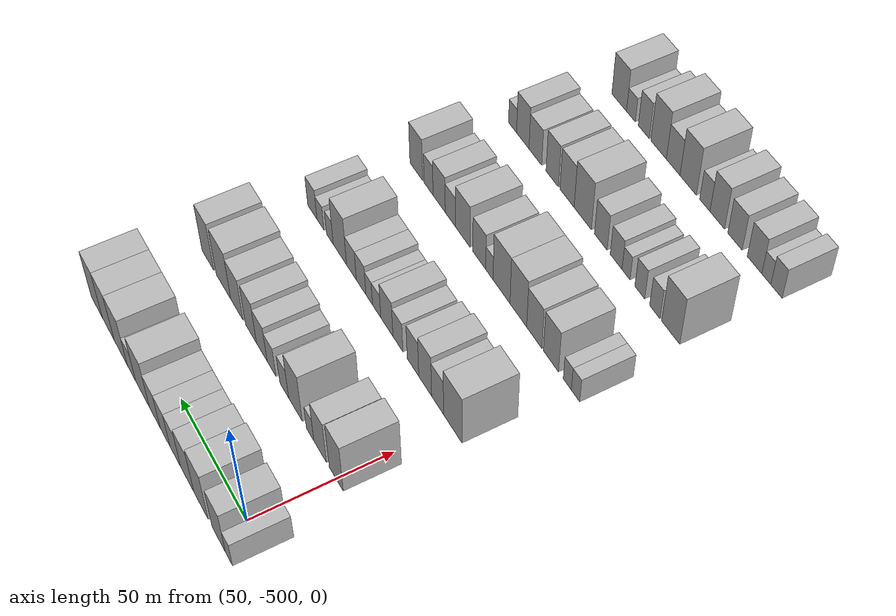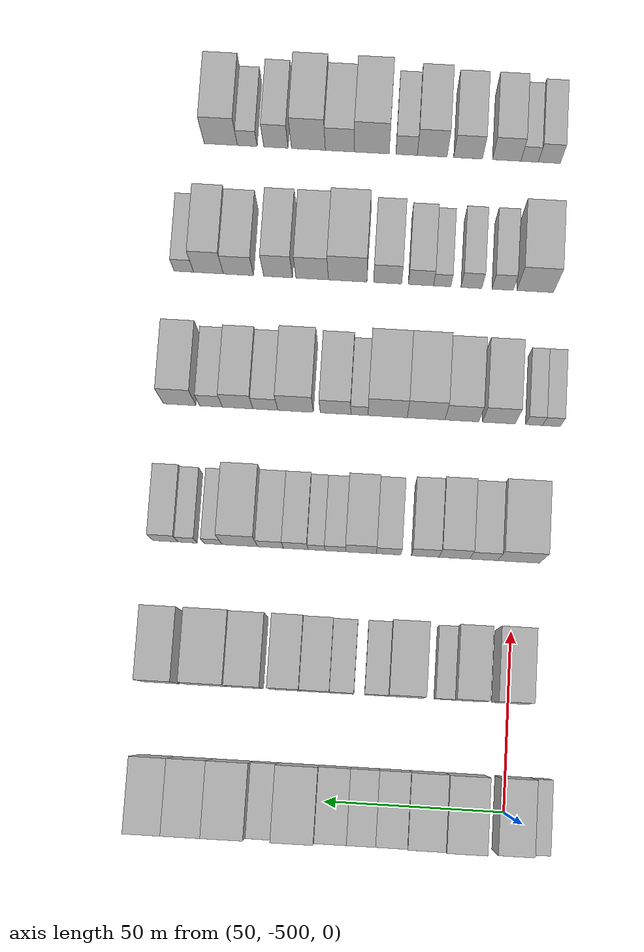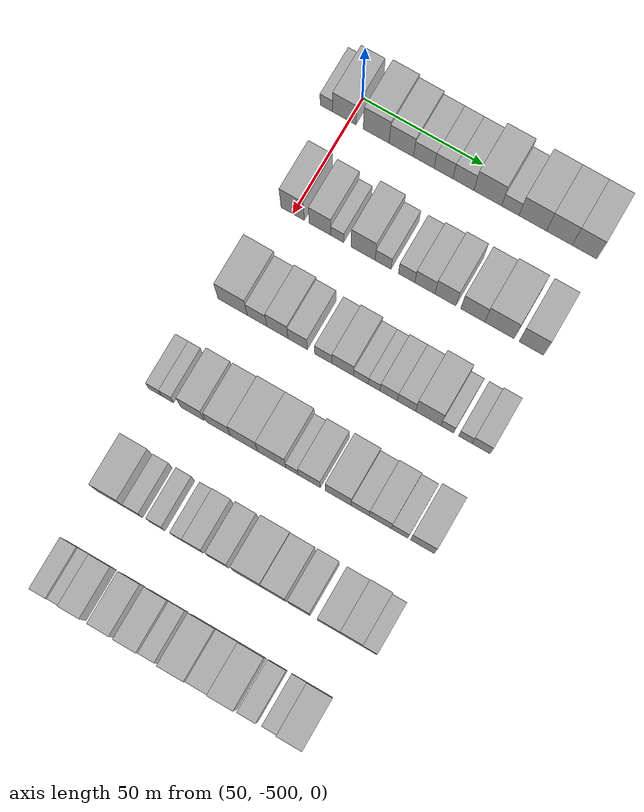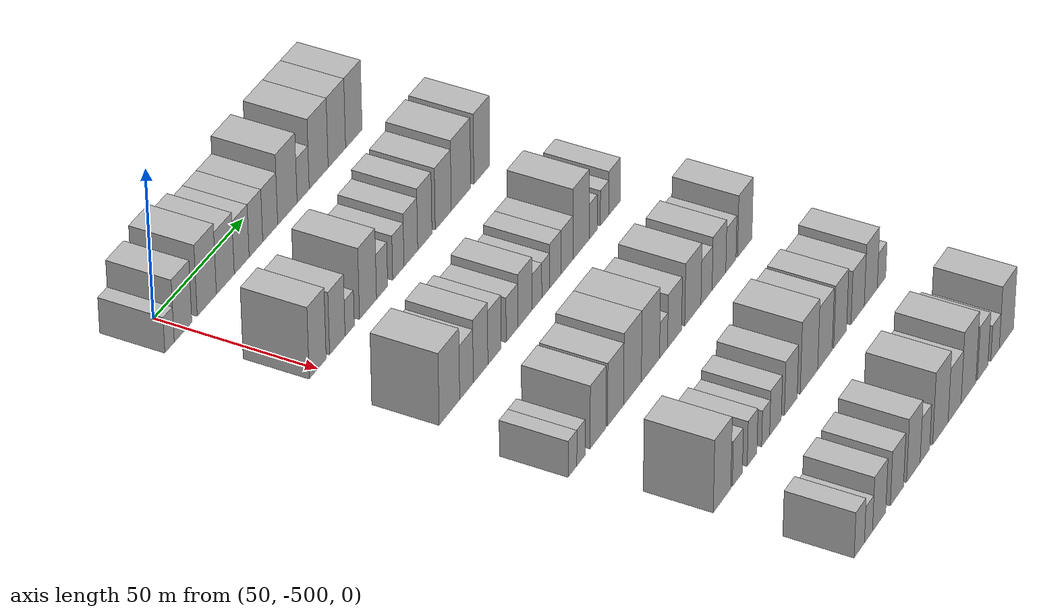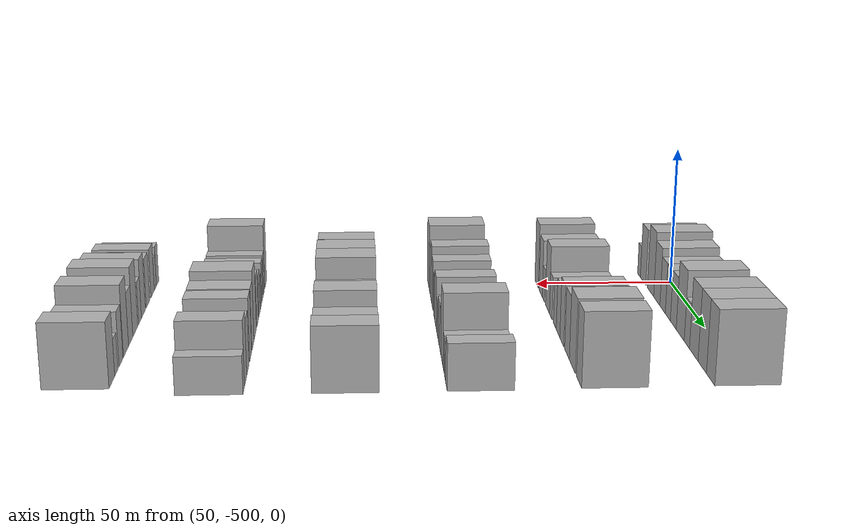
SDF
<sdf version="1.6">
 <world name="default">
  <model name="building_12">
   <static>1</static>
   <pose>50.0000 -509.3735 0 0.000000 0.000000 0.000000</pose>
   <link name="link">
    <pose>0 0 6.00 0 0 0</pose>
    <collision name="collision"><geometry><box><size>20.0000 5.1601 12.0000</size></box></geometry></collision>
    <visual name="visual">
     <cast_shadows>0</cast_shadows>
     <geometry><box><size>20.0000 5.1601 12.0000</size></box></geometry>
     <material>
      <script>
       <uri>model://HANNAS_wall/materials/scripts</uri>
       <uri>model://HANNAS_wall/materials/textures</uri>
       <name>vrc/HANNAS_wall</name>
      </script>
     </material>
    </visual>
   </link>
  </model>
  <model name="building_13">
   <static>1</static>
   <pose>50.0000 -501.9229 0 0.000000 0.000000 0.000000</pose>
   <link name="link">
    <pose>0 0 10.50 0 0 0</pose>
    <collision name="collision"><geometry><box><size>20.0000 9.7411 21.0000</size></box></geometry></collision>
    <visual name="visual">
     <cast_shadows>0</cast_shadows>
     <geometry><box><size>20.0000 9.7411 21.0000</size></box></geometry>
     <material>
      <script>
       <uri>model://HANNAS_wall/materials/scripts</uri>
       <uri>model://HANNAS_wall/materials/textures</uri>
       <name>vrc/HANNAS_wall</name>
      </script>
     </material>
    </visual>
   </link>
  </model>
  <model name="building_14">
   <static>1</static>
   <pose>50.0000 -488.6855 0 0.000000 0.000000 0.000000</pose>
   <link name="link">
    <pose>0 0 12.00 0 0 0</pose>
    <collision name="collision"><geometry><box><size>20.0000 10.7336 24.0000</size></box></geometry></collision>
    <visual name="visual">
     <cast_shadows>0</cast_shadows>
     <geometry><box><size>20.0000 10.7336 24.0000</size></box></geometry>
     <material>
      <script>
       <uri>model://HANNAS_wall/materials/scripts</uri>
       <uri>model://HANNAS_wall/materials/textures</uri>
       <name>vrc/HANNAS_wall</name>
      </script>
     </material>
    </visual>
   </link>
  </model>
  <model name="building_15">
   <static>1</static>
   <pose>50.0000 -478.2708 0 0.000000 0.000000 0.000000</pose>
   <link name="link">
    <pose>0 0 10.50 0 0 0</pose>
    <collision name="collision"><geometry><box><size>20.0000 10.0958 21.0000</size></box></geometry></collision>
    <visual name="visual">
     <cast_shadows>0</cast_shadows>
     <geometry><box><size>20.0000 10.0958 21.0000</size></box></geometry>
     <material>
      <script>
       <uri>model://HANNAS_wall/materials/scripts</uri>
       <uri>model://HANNAS_wall/materials/textures</uri>
       <name>vrc/HANNAS_wall</name>
      </script>
     </material>
    </visual>
   </link>
  </model>
  <model name="building_16">
   <static>1</static>
   <pose>50.0000 -468.9750 0 0.000000 0.000000 0.000000</pose>
   <link name="link">
    <pose>0 0 9.00 0 0 0</pose>
    <collision name="collision"><geometry><box><size>20.0000 8.4958 18.0000</size></box></geometry></collision>
    <visual name="visual">
     <cast_shadows>0</cast_shadows>
     <geometry><box><size>20.0000 8.4958 18.0000</size></box></geometry>
     <material>
      <script>
       <uri>model://HANNAS_wall/materials/scripts</uri>
       <uri>model://HANNAS_wall/materials/textures</uri>
       <name>vrc/HANNAS_wall</name>
      </script>
     </material>
    </visual>
   </link>
  </model>
  <model name="building_17">
   <static>1</static>
   <pose>50.0000 -460.8340 0 0.000000 0.000000 0.000000</pose>
   <link name="link">
    <pose>0 0 9.00 0 0 0</pose>
    <collision name="collision"><geometry><box><size>20.0000 7.7862 18.0000</size></box></geometry></collision>
    <visual name="visual">
     <cast_shadows>0</cast_shadows>
     <geometry><box><size>20.0000 7.7862 18.0000</size></box></geometry>
     <material>
      <script>
       <uri>model://HANNAS_wall/materials/scripts</uri>
       <uri>model://HANNAS_wall/materials/textures</uri>
       <name>vrc/HANNAS_wall</name>
      </script>
     </material>
    </visual>
   </link>
  </model>
  <model name="building_18">
   <static>1</static>
   <pose>50.0000 -452.6051 0 0.000000 0.000000 0.000000</pose>
   <link name="link">
    <pose>0 0 9.00 0 0 0</pose>
    <collision name="collision"><geometry><box><size>20.0000 8.6716 18.0000</size></box></geometry></collision>
    <visual name="visual">
     <cast_shadows>0</cast_shadows>
     <geometry><box><size>20.0000 8.6716 18.0000</size></box></geometry>
     <material>
      <script>
       <uri>model://HANNAS_wall/materials/scripts</uri>
       <uri>model://HANNAS_wall/materials/textures</uri>
       <name>vrc/HANNAS_wall</name>
      </script>
     </material>
    </visual>
   </link>
  </model>
  <model name="building_19">
   <static>1</static>
   <pose>50.0000 -442.5982 0 0.000000 0.000000 0.000000</pose>
   <link name="link">
    <pose>0 0 12.00 0 0 0</pose>
    <collision name="collision"><geometry><box><size>20.0000 11.3421 24.0000</size></box></geometry></collision>
    <visual name="visual">
     <cast_shadows>0</cast_shadows>
     <geometry><box><size>20.0000 11.3421 24.0000</size></box></geometry>
     <material>
      <script>
       <uri>model://HANNAS_wall/materials/scripts</uri>
       <uri>model://HANNAS_wall/materials/textures</uri>
       <name>vrc/HANNAS_wall</name>
      </script>
     </material>
    </visual>
   </link>
  </model>
  <model name="building_20">
   <static>1</static>
   <pose>50.0000 -433.3736 0 0.000000 0.000000 0.000000</pose>
   <link name="link">
    <pose>0 0 7.50 0 0 0</pose>
    <collision name="collision"><geometry><box><size>20.0000 7.1072 15.0000</size></box></geometry></collision>
    <visual name="visual">
     <cast_shadows>0</cast_shadows>
     <geometry><box><size>20.0000 7.1072 15.0000</size></box></geometry>
     <material>
      <script>
       <uri>model://HANNAS_wall/materials/scripts</uri>
       <uri>model://HANNAS_wall/materials/textures</uri>
       <name>vrc/HANNAS_wall</name>
      </script>
     </material>
    </visual>
   </link>
  </model>
  <model name="building_21">
   <static>1</static>
   <pose>50.0000 -424.1923 0 0.000000 0.000000 0.000000</pose>
   <link name="link">
    <pose>0 0 12.00 0 0 0</pose>
    <collision name="collision"><geometry><box><size>20.0000 11.2555 24.0000</size></box></geometry></collision>
    <visual name="visual">
     <cast_shadows>0</cast_shadows>
     <geometry><box><size>20.0000 11.2555 24.0000</size></box></geometry>
     <material>
      <script>
       <uri>model://HANNAS_wall/materials/scripts</uri>
       <uri>model://HANNAS_wall/materials/textures</uri>
       <name>vrc/HANNAS_wall</name>
      </script>
     </material>
    </visual>
   </link>
  </model>
  <model name="building_22">
   <static>1</static>
   <pose>50.0000 -413.3363 0 0.000000 0.000000 0.000000</pose>
   <link name="link">
    <pose>0 0 12.00 0 0 0</pose>
    <collision name="collision"><geometry><box><size>20.0000 10.4565 24.0000</size></box></geometry></collision>
    <visual name="visual">
     <cast_shadows>0</cast_shadows>
     <geometry><box><size>20.0000 10.4565 24.0000</size></box></geometry>
     <material>
      <script>
       <uri>model://HANNAS_wall/materials/scripts</uri>
       <uri>model://HANNAS_wall/materials/textures</uri>
       <name>vrc/HANNAS_wall</name>
      </script>
     </material>
    </visual>
   </link>
  </model>
  <model name="building_23">
   <static>1</static>
   <pose>50.0000 -403.1218 0 0.000000 0.000000 0.000000</pose>
   <link name="link">
    <pose>0 0 12.00 0 0 0</pose>
    <collision name="collision"><geometry><box><size>20.0000 9.9726 24.0000</size></box></geometry></collision>
    <visual name="visual">
     <cast_shadows>0</cast_shadows>
     <geometry><box><size>20.0000 9.9726 24.0000</size></box></geometry>
     <material>
      <script>
       <uri>model://HANNAS_wall/materials/scripts</uri>
       <uri>model://HANNAS_wall/materials/textures</uri>
       <name>vrc/HANNAS_wall</name>
      </script>
     </material>
    </visual>
   </link>
  </model>
  <model name="building_150">
   <static>1</static>
   <pose>90.0000 -500.0628 0 0.000000 0.000000 0.000000</pose>
   <link name="link">
    <pose>0 0 12.00 0 0 0</pose>
    <collision name="collision"><geometry><box><size>20.0000 9.6145 24.0000</size></box></geometry></collision>
    <visual name="visual">
     <cast_shadows>0</cast_shadows>
     <geometry><box><size>20.0000 9.6145 24.0000</size></box></geometry>
     <material>
      <script>
       <uri>model://HANNAS_wall/materials/scripts</uri>
       <uri>model://HANNAS_wall/materials/textures</uri>
       <name>vrc/HANNAS_wall</name>
      </script>
     </material>
    </visual>
   </link>
  </model>
  <model name="building_151">
   <static>1</static>
   <pose>90.0000 -488.8158 0 0.000000 0.000000 0.000000</pose>
   <link name="link">
    <pose>0 0 10.50 0 0 0</pose>
    <collision name="collision"><geometry><box><size>20.0000 8.8794 21.0000</size></box></geometry></collision>
    <visual name="visual">
     <cast_shadows>0</cast_shadows>
     <geometry><box><size>20.0000 8.8794 21.0000</size></box></geometry>
     <material>
      <script>
       <uri>model://HANNAS_wall/materials/scripts</uri>
       <uri>model://HANNAS_wall/materials/textures</uri>
       <name>vrc/HANNAS_wall</name>
      </script>
     </material>
    </visual>
   </link>
  </model>
  <model name="building_152">
   <static>1</static>
   <pose>90.0000 -481.7092 0 0.000000 0.000000 0.000000</pose>
   <link name="link">
    <pose>0 0 6.00 0 0 0</pose>
    <collision name="collision"><geometry><box><size>20.0000 5.3338 12.0000</size></box></geometry></collision>
    <visual name="visual">
     <cast_shadows>0</cast_shadows>
     <geometry><box><size>20.0000 5.3338 12.0000</size></box></geometry>
     <material>
      <script>
       <uri>model://HANNAS_wall/materials/scripts</uri>
       <uri>model://HANNAS_wall/materials/textures</uri>
       <name>vrc/HANNAS_wall</name>
      </script>
     </material>
    </visual>
   </link>
  </model>
  <model name="building_153">
   <static>1</static>
   <pose>90.0000 -471.0716 0 0.000000 0.000000 0.000000</pose>
   <link name="link">
    <pose>0 0 12.00 0 0 0</pose>
    <collision name="collision"><geometry><box><size>20.0000 9.9414 24.0000</size></box></geometry></collision>
    <visual name="visual">
     <cast_shadows>0</cast_shadows>
     <geometry><box><size>20.0000 9.9414 24.0000</size></box></geometry>
     <material>
      <script>
       <uri>model://HANNAS_wall/materials/scripts</uri>
       <uri>model://HANNAS_wall/materials/textures</uri>
       <name>vrc/HANNAS_wall</name>
      </script>
     </material>
    </visual>
   </link>
  </model>
  <model name="building_154">
   <static>1</static>
   <pose>90.0000 -462.8353 0 0.000000 0.000000 0.000000</pose>
   <link name="link">
    <pose>0 0 7.50 0 0 0</pose>
    <collision name="collision"><geometry><box><size>20.0000 6.5312 15.0000</size></box></geometry></collision>
    <visual name="visual">
     <cast_shadows>0</cast_shadows>
     <geometry><box><size>20.0000 6.5312 15.0000</size></box></geometry>
     <material>
      <script>
       <uri>model://HANNAS_wall/materials/scripts</uri>
       <uri>model://HANNAS_wall/materials/textures</uri>
       <name>vrc/HANNAS_wall</name>
      </script>
     </material>
    </visual>
   </link>
  </model>
  <model name="building_155">
   <static>1</static>
   <pose>90.0000 -453.2290 0 0.000000 0.000000 0.000000</pose>
   <link name="link">
    <pose>0 0 7.50 0 0 0</pose>
    <collision name="collision"><geometry><box><size>20.0000 6.6815 15.0000</size></box></geometry></collision>
    <visual name="visual">
     <cast_shadows>0</cast_shadows>
     <geometry><box><size>20.0000 6.6815 15.0000</size></box></geometry>
     <material>
      <script>
       <uri>model://HANNAS_wall/materials/scripts</uri>
       <uri>model://HANNAS_wall/materials/textures</uri>
       <name>vrc/HANNAS_wall</name>
      </script>
     </material>
    </visual>
   </link>
  </model>
  <model name="building_156">
   <static>1</static>
   <pose>90.0000 -445.7831 0 0.000000 0.000000 0.000000</pose>
   <link name="link">
    <pose>0 0 9.00 0 0 0</pose>
    <collision name="collision"><geometry><box><size>20.0000 8.2102 18.0000</size></box></geometry></collision>
    <visual name="visual">
     <cast_shadows>0</cast_shadows>
     <geometry><box><size>20.0000 8.2102 18.0000</size></box></geometry>
     <material>
      <script>
       <uri>model://HANNAS_wall/materials/scripts</uri>
       <uri>model://HANNAS_wall/materials/textures</uri>
       <name>vrc/HANNAS_wall</name>
      </script>
     </material>
    </visual>
   </link>
  </model>
  <model name="building_157">
   <static>1</static>
   <pose>90.0000 -437.3935 0 0.000000 0.000000 0.000000</pose>
   <link name="link">
    <pose>0 0 10.50 0 0 0</pose>
    <collision name="collision"><geometry><box><size>20.0000 8.5689 21.0000</size></box></geometry></collision>
    <visual name="visual">
     <cast_shadows>0</cast_shadows>
     <geometry><box><size>20.0000 8.5689 21.0000</size></box></geometry>
     <material>
      <script>
       <uri>model://HANNAS_wall/materials/scripts</uri>
       <uri>model://HANNAS_wall/materials/textures</uri>
       <name>vrc/HANNAS_wall</name>
      </script>
     </material>
    </visual>
   </link>
  </model>
  <model name="building_158">
   <static>1</static>
   <pose>90.0000 -426.2437 0 0.000000 0.000000 0.000000</pose>
   <link name="link">
    <pose>0 0 10.50 0 0 0</pose>
    <collision name="collision"><geometry><box><size>20.0000 9.7307 21.0000</size></box></geometry></collision>
    <visual name="visual">
     <cast_shadows>0</cast_shadows>
     <geometry><box><size>20.0000 9.7307 21.0000</size></box></geometry>
     <material>
      <script>
       <uri>model://HANNAS_wall/materials/scripts</uri>
       <uri>model://HANNAS_wall/materials/textures</uri>
       <name>vrc/HANNAS_wall</name>
      </script>
     </material>
    </visual>
   </link>
  </model>
  <model name="building_159">
   <static>1</static>
   <pose>90.0000 -415.4291 0 0.000000 0.000000 0.000000</pose>
   <link name="link">
    <pose>0 0 12.00 0 0 0</pose>
    <collision name="collision"><geometry><box><size>20.0000 11.8985 24.0000</size></box></geometry></collision>
    <visual name="visual">
     <cast_shadows>0</cast_shadows>
     <geometry><box><size>20.0000 11.8985 24.0000</size></box></geometry>
     <material>
      <script>
       <uri>model://HANNAS_wall/materials/scripts</uri>
       <uri>model://HANNAS_wall/materials/textures</uri>
       <name>vrc/HANNAS_wall</name>
      </script>
     </material>
    </visual>
   </link>
  </model>
  <model name="building_160">
   <static>1</static>
   <pose>90.0000 -402.5611 0 0.000000 0.000000 0.000000</pose>
   <link name="link">
    <pose>0 0 12.00 0 0 0</pose>
    <collision name="collision"><geometry><box><size>20.0000 9.8374 24.0000</size></box></geometry></collision>
    <visual name="visual">
     <cast_shadows>0</cast_shadows>
     <geometry><box><size>20.0000 9.8374 24.0000</size></box></geometry>
     <material>
      <script>
       <uri>model://HANNAS_wall/materials/scripts</uri>
       <uri>model://HANNAS_wall/materials/textures</uri>
       <name>vrc/HANNAS_wall</name>
      </script>
     </material>
    </visual>
   </link>
  </model>
  <model name="building_287">
   <static>1</static>
   <pose>130.0000 -501.2311 0 0.000000 0.000000 0.000000</pose>
   <link name="link">
    <pose>0 0 12.00 0 0 0</pose>
    <collision name="collision"><geometry><box><size>20.0000 11.9650 24.0000</size></box></geometry></collision>
    <visual name="visual">
     <cast_shadows>0</cast_shadows>
     <geometry><box><size>20.0000 11.9650 24.0000</size></box></geometry>
     <material>
      <script>
       <uri>model://HANNAS_wall/materials/scripts</uri>
       <uri>model://HANNAS_wall/materials/textures</uri>
       <name>vrc/HANNAS_wall</name>
      </script>
     </material>
    </visual>
   </link>
  </model>
  <model name="building_288">
   <static>1</static>
   <pose>130.0000 -491.2290 0 0.000000 0.000000 0.000000</pose>
   <link name="link">
    <pose>0 0 9.00 0 0 0</pose>
    <collision name="collision"><geometry><box><size>20.0000 8.0391 18.0000</size></box></geometry></collision>
    <visual name="visual">
     <cast_shadows>0</cast_shadows>
     <geometry><box><size>20.0000 8.0391 18.0000</size></box></geometry>
     <material>
      <script>
       <uri>model://HANNAS_wall/materials/scripts</uri>
       <uri>model://HANNAS_wall/materials/textures</uri>
       <name>vrc/HANNAS_wall</name>
      </script>
     </material>
    </visual>
   </link>
  </model>
  <model name="building_289">
   <static>1</static>
   <pose>130.0000 -482.8814 0 0.000000 0.000000 0.000000</pose>
   <link name="link">
    <pose>0 0 10.50 0 0 0</pose>
    <collision name="collision"><geometry><box><size>20.0000 8.6561 21.0000</size></box></geometry></collision>
    <visual name="visual">
     <cast_shadows>0</cast_shadows>
     <geometry><box><size>20.0000 8.6561 21.0000</size></box></geometry>
     <material>
      <script>
       <uri>model://HANNAS_wall/materials/scripts</uri>
       <uri>model://HANNAS_wall/materials/textures</uri>
       <name>vrc/HANNAS_wall</name>
      </script>
     </material>
    </visual>
   </link>
  </model>
  <model name="building_290">
   <static>1</static>
   <pose>130.0000 -474.5898 0 0.000000 0.000000 0.000000</pose>
   <link name="link">
    <pose>0 0 9.00 0 0 0</pose>
    <collision name="collision"><geometry><box><size>20.0000 7.9272 18.0000</size></box></geometry></collision>
    <visual name="visual">
     <cast_shadows>0</cast_shadows>
     <geometry><box><size>20.0000 7.9272 18.0000</size></box></geometry>
     <material>
      <script>
       <uri>model://HANNAS_wall/materials/scripts</uri>
       <uri>model://HANNAS_wall/materials/textures</uri>
       <name>vrc/HANNAS_wall</name>
      </script>
     </material>
    </visual>
   </link>
  </model>
  <model name="building_291">
   <static>1</static>
   <pose>130.0000 -464.1176 0 0.000000 0.000000 0.000000</pose>
   <link name="link">
    <pose>0 0 7.50 0 0 0</pose>
    <collision name="collision"><geometry><box><size>20.0000 7.0173 15.0000</size></box></geometry></collision>
    <visual name="visual">
     <cast_shadows>0</cast_shadows>
     <geometry><box><size>20.0000 7.0173 15.0000</size></box></geometry>
     <material>
      <script>
       <uri>model://HANNAS_wall/materials/scripts</uri>
       <uri>model://HANNAS_wall/materials/textures</uri>
       <name>vrc/HANNAS_wall</name>
      </script>
     </material>
    </visual>
   </link>
  </model>
  <model name="building_292">
   <static>1</static>
   <pose>130.0000 -456.2841 0 0.000000 0.000000 0.000000</pose>
   <link name="link">
    <pose>0 0 9.00 0 0 0</pose>
    <collision name="collision"><geometry><box><size>20.0000 8.6497 18.0000</size></box></geometry></collision>
    <visual name="visual">
     <cast_shadows>0</cast_shadows>
     <geometry><box><size>20.0000 8.6497 18.0000</size></box></geometry>
     <material>
      <script>
       <uri>model://HANNAS_wall/materials/scripts</uri>
       <uri>model://HANNAS_wall/materials/textures</uri>
       <name>vrc/HANNAS_wall</name>
      </script>
     </material>
    </visual>
   </link>
  </model>
  <model name="building_293">
   <static>1</static>
   <pose>130.0000 -448.9677 0 0.000000 0.000000 0.000000</pose>
   <link name="link">
    <pose>0 0 6.00 0 0 0</pose>
    <collision name="collision"><geometry><box><size>20.0000 5.9830 12.0000</size></box></geometry></collision>
    <visual name="visual">
     <cast_shadows>0</cast_shadows>
     <geometry><box><size>20.0000 5.9830 12.0000</size></box></geometry>
     <material>
      <script>
       <uri>model://HANNAS_wall/materials/scripts</uri>
       <uri>model://HANNAS_wall/materials/textures</uri>
       <name>vrc/HANNAS_wall</name>
      </script>
     </material>
    </visual>
   </link>
  </model>
  <model name="building_294">
   <static>1</static>
   <pose>130.0000 -443.5596 0 0.000000 0.000000 0.000000</pose>
   <link name="link">
    <pose>0 0 6.00 0 0 0</pose>
    <collision name="collision"><geometry><box><size>20.0000 4.8331 12.0000</size></box></geometry></collision>
    <visual name="visual">
     <cast_shadows>0</cast_shadows>
     <geometry><box><size>20.0000 4.8331 12.0000</size></box></geometry>
     <material>
      <script>
       <uri>model://HANNAS_wall/materials/scripts</uri>
       <uri>model://HANNAS_wall/materials/textures</uri>
       <name>vrc/HANNAS_wall</name>
      </script>
     </material>
    </visual>
   </link>
  </model>
  <model name="building_295">
   <static>1</static>
   <pose>130.0000 -437.6165 0 0.000000 0.000000 0.000000</pose>
   <link name="link">
    <pose>0 0 7.50 0 0 0</pose>
    <collision name="collision"><geometry><box><size>20.0000 7.0532 15.0000</size></box></geometry></collision>
    <visual name="visual">
     <cast_shadows>0</cast_shadows>
     <geometry><box><size>20.0000 7.0532 15.0000</size></box></geometry>
     <material>
      <script>
       <uri>model://HANNAS_wall/materials/scripts</uri>
       <uri>model://HANNAS_wall/materials/textures</uri>
       <name>vrc/HANNAS_wall</name>
      </script>
     </material>
    </visual>
   </link>
  </model>
  <model name="building_296">
   <static>1</static>
   <pose>130.0000 -430.4290 0 0.000000 0.000000 0.000000</pose>
   <link name="link">
    <pose>0 0 7.50 0 0 0</pose>
    <collision name="collision"><geometry><box><size>20.0000 7.3217 15.0000</size></box></geometry></collision>
    <visual name="visual">
     <cast_shadows>0</cast_shadows>
     <geometry><box><size>20.0000 7.3217 15.0000</size></box></geometry>
     <material>
      <script>
       <uri>model://HANNAS_wall/materials/scripts</uri>
       <uri>model://HANNAS_wall/materials/textures</uri>
       <name>vrc/HANNAS_wall</name>
      </script>
     </material>
    </visual>
   </link>
  </model>
  <model name="building_297">
   <static>1</static>
   <pose>130.0000 -421.6729 0 0.000000 0.000000 0.000000</pose>
   <link name="link">
    <pose>0 0 12.00 0 0 0</pose>
    <collision name="collision"><geometry><box><size>20.0000 10.1904 24.0000</size></box></geometry></collision>
    <visual name="visual">
     <cast_shadows>0</cast_shadows>
     <geometry><box><size>20.0000 10.1904 24.0000</size></box></geometry>
     <material>
      <script>
       <uri>model://HANNAS_wall/materials/scripts</uri>
       <uri>model://HANNAS_wall/materials/textures</uri>
       <name>vrc/HANNAS_wall</name>
      </script>
     </material>
    </visual>
   </link>
  </model>
  <model name="building_298">
   <static>1</static>
   <pose>130.0000 -414.0072 0 0.000000 0.000000 0.000000</pose>
   <link name="link">
    <pose>0 0 6.00 0 0 0</pose>
    <collision name="collision"><geometry><box><size>20.0000 5.1411 12.0000</size></box></geometry></collision>
    <visual name="visual">
     <cast_shadows>0</cast_shadows>
     <geometry><box><size>20.0000 5.1411 12.0000</size></box></geometry>
     <material>
      <script>
       <uri>model://HANNAS_wall/materials/scripts</uri>
       <uri>model://HANNAS_wall/materials/textures</uri>
       <name>vrc/HANNAS_wall</name>
      </script>
     </material>
    </visual>
   </link>
  </model>
  <model name="building_299">
   <static>1</static>
   <pose>130.0000 -406.7465 0 0.000000 0.000000 0.000000</pose>
   <link name="link">
    <pose>0 0 6.00 0 0 0</pose>
    <collision name="collision"><geometry><box><size>20.0000 5.3802 12.0000</size></box></geometry></collision>
    <visual name="visual">
     <cast_shadows>0</cast_shadows>
     <geometry><box><size>20.0000 5.3802 12.0000</size></box></geometry>
     <material>
      <script>
       <uri>model://HANNAS_wall/materials/scripts</uri>
       <uri>model://HANNAS_wall/materials/textures</uri>
       <name>vrc/HANNAS_wall</name>
      </script>
     </material>
    </visual>
   </link>
  </model>
  <model name="building_300">
   <static>1</static>
   <pose>130.0000 -400.4100 0 0.000000 0.000000 0.000000</pose>
   <link name="link">
    <pose>0 0 7.50 0 0 0</pose>
    <collision name="collision"><geometry><box><size>20.0000 7.2929 15.0000</size></box></geometry></collision>
    <visual name="visual">
     <cast_shadows>0</cast_shadows>
     <geometry><box><size>20.0000 7.2929 15.0000</size></box></geometry>
     <material>
      <script>
       <uri>model://HANNAS_wall/materials/scripts</uri>
       <uri>model://HANNAS_wall/materials/textures</uri>
       <name>vrc/HANNAS_wall</name>
      </script>
     </material>
    </visual>
   </link>
  </model>
  <model name="building_431">
   <static>1</static>
   <pose>170.0000 -509.1385 0 0.000000 0.000000 0.000000</pose>
   <link name="link">
    <pose>0 0 6.00 0 0 0</pose>
    <collision name="collision"><geometry><box><size>20.0000 5.1573 12.0000</size></box></geometry></collision>
    <visual name="visual">
     <cast_shadows>0</cast_shadows>
     <geometry><box><size>20.0000 5.1573 12.0000</size></box></geometry>
     <material>
      <script>
       <uri>model://HANNAS_wall/materials/scripts</uri>
       <uri>model://HANNAS_wall/materials/textures</uri>
       <name>vrc/HANNAS_wall</name>
      </script>
     </material>
    </visual>
   </link>
  </model>
  <model name="building_432">
   <static>1</static>
   <pose>170.0000 -504.0780 0 0.000000 0.000000 0.000000</pose>
   <link name="link">
    <pose>0 0 6.00 0 0 0</pose>
    <collision name="collision"><geometry><box><size>20.0000 4.9638 12.0000</size></box></geometry></collision>
    <visual name="visual">
     <cast_shadows>0</cast_shadows>
     <geometry><box><size>20.0000 4.9638 12.0000</size></box></geometry>
     <material>
      <script>
       <uri>model://HANNAS_wall/materials/scripts</uri>
       <uri>model://HANNAS_wall/materials/textures</uri>
       <name>vrc/HANNAS_wall</name>
      </script>
     </material>
    </visual>
   </link>
  </model>
  <model name="building_433">
   <static>1</static>
   <pose>170.0000 -493.8339 0 0.000000 0.000000 0.000000</pose>
   <link name="link">
    <pose>0 0 10.50 0 0 0</pose>
    <collision name="collision"><geometry><box><size>20.0000 9.5243 21.0000</size></box></geometry></collision>
    <visual name="visual">
     <cast_shadows>0</cast_shadows>
     <geometry><box><size>20.0000 9.5243 21.0000</size></box></geometry>
     <material>
      <script>
       <uri>model://HANNAS_wall/materials/scripts</uri>
       <uri>model://HANNAS_wall/materials/textures</uri>
       <name>vrc/HANNAS_wall</name>
      </script>
     </material>
    </visual>
   </link>
  </model>
  <model name="building_434">
   <static>1</static>
   <pose>170.0000 -483.1790 0 0.000000 0.000000 0.000000</pose>
   <link name="link">
    <pose>0 0 10.50 0 0 0</pose>
    <collision name="collision"><geometry><box><size>20.0000 9.7855 21.0000</size></box></geometry></collision>
    <visual name="visual">
     <cast_shadows>0</cast_shadows>
     <geometry><box><size>20.0000 9.7855 21.0000</size></box></geometry>
     <material>
      <script>
       <uri>model://HANNAS_wall/materials/scripts</uri>
       <uri>model://HANNAS_wall/materials/textures</uri>
       <name>vrc/HANNAS_wall</name>
      </script>
     </material>
    </visual>
   </link>
  </model>
  <model name="building_435">
   <static>1</static>
   <pose>170.0000 -472.7979 0 0.000000 0.000000 0.000000</pose>
   <link name="link">
    <pose>0 0 12.00 0 0 0</pose>
    <collision name="collision"><geometry><box><size>20.0000 10.9767 24.0000</size></box></geometry></collision>
    <visual name="visual">
     <cast_shadows>0</cast_shadows>
     <geometry><box><size>20.0000 10.9767 24.0000</size></box></geometry>
     <material>
      <script>
       <uri>model://HANNAS_wall/materials/scripts</uri>
       <uri>model://HANNAS_wall/materials/textures</uri>
       <name>vrc/HANNAS_wall</name>
      </script>
     </material>
    </visual>
   </link>
  </model>
  <model name="building_436">
   <static>1</static>
   <pose>170.0000 -461.6426 0 0.000000 0.000000 0.000000</pose>
   <link name="link">
    <pose>0 0 12.00 0 0 0</pose>
    <collision name="collision"><geometry><box><size>20.0000 11.3337 24.0000</size></box></geometry></collision>
    <visual name="visual">
     <cast_shadows>0</cast_shadows>
     <geometry><box><size>20.0000 11.3337 24.0000</size></box></geometry>
     <material>
      <script>
       <uri>model://HANNAS_wall/materials/scripts</uri>
       <uri>model://HANNAS_wall/materials/textures</uri>
       <name>vrc/HANNAS_wall</name>
      </script>
     </material>
    </visual>
   </link>
  </model>
  <model name="building_437">
   <static>1</static>
   <pose>170.0000 -453.4624 0 0.000000 0.000000 0.000000</pose>
   <link name="link">
    <pose>0 0 6.00 0 0 0</pose>
    <collision name="collision"><geometry><box><size>20.0000 5.0268 12.0000</size></box></geometry></collision>
    <visual name="visual">
     <cast_shadows>0</cast_shadows>
     <geometry><box><size>20.0000 5.0268 12.0000</size></box></geometry>
     <material>
      <script>
       <uri>model://HANNAS_wall/materials/scripts</uri>
       <uri>model://HANNAS_wall/materials/textures</uri>
       <name>vrc/HANNAS_wall</name>
      </script>
     </material>
    </visual>
   </link>
  </model>
  <model name="building_438">
   <static>1</static>
   <pose>170.0000 -446.5147 0 0.000000 0.000000 0.000000</pose>
   <link name="link">
    <pose>0 0 9.00 0 0 0</pose>
    <collision name="collision"><geometry><box><size>20.0000 8.8685 18.0000</size></box></geometry></collision>
    <visual name="visual">
     <cast_shadows>0</cast_shadows>
     <geometry><box><size>20.0000 8.8685 18.0000</size></box></geometry>
     <material>
      <script>
       <uri>model://HANNAS_wall/materials/scripts</uri>
       <uri>model://HANNAS_wall/materials/textures</uri>
       <name>vrc/HANNAS_wall</name>
      </script>
     </material>
    </visual>
   </link>
  </model>
  <model name="building_439">
   <static>1</static>
   <pose>170.0000 -434.9189 0 0.000000 0.000000 0.000000</pose>
   <link name="link">
    <pose>0 0 10.50 0 0 0</pose>
    <collision name="collision"><geometry><box><size>20.0000 10.3233 21.0000</size></box></geometry></collision>
    <visual name="visual">
     <cast_shadows>0</cast_shadows>
     <geometry><box><size>20.0000 10.3233 21.0000</size></box></geometry>
     <material>
      <script>
       <uri>model://HANNAS_wall/materials/scripts</uri>
       <uri>model://HANNAS_wall/materials/textures</uri>
       <name>vrc/HANNAS_wall</name>
      </script>
     </material>
    </visual>
   </link>
  </model>
  <model name="building_440">
   <static>1</static>
   <pose>170.0000 -426.1448 0 0.000000 0.000000 0.000000</pose>
   <link name="link">
    <pose>0 0 7.50 0 0 0</pose>
    <collision name="collision"><geometry><box><size>20.0000 7.2248 15.0000</size></box></geometry></collision>
    <visual name="visual">
     <cast_shadows>0</cast_shadows>
     <geometry><box><size>20.0000 7.2248 15.0000</size></box></geometry>
     <material>
      <script>
       <uri>model://HANNAS_wall/materials/scripts</uri>
       <uri>model://HANNAS_wall/materials/textures</uri>
       <name>vrc/HANNAS_wall</name>
      </script>
     </material>
    </visual>
   </link>
  </model>
  <model name="building_441">
   <static>1</static>
   <pose>170.0000 -418.1004 0 0.000000 0.000000 0.000000</pose>
   <link name="link">
    <pose>0 0 9.00 0 0 0</pose>
    <collision name="collision"><geometry><box><size>20.0000 8.8639 18.0000</size></box></geometry></collision>
    <visual name="visual">
     <cast_shadows>0</cast_shadows>
     <geometry><box><size>20.0000 8.8639 18.0000</size></box></geometry>
     <material>
      <script>
       <uri>model://HANNAS_wall/materials/scripts</uri>
       <uri>model://HANNAS_wall/materials/textures</uri>
       <name>vrc/HANNAS_wall</name>
      </script>
     </material>
    </visual>
   </link>
  </model>
  <model name="building_442">
   <static>1</static>
   <pose>170.0000 -410.3315 0 0.000000 0.000000 0.000000</pose>
   <link name="link">
    <pose>0 0 7.50 0 0 0</pose>
    <collision name="collision"><geometry><box><size>20.0000 6.6740 15.0000</size></box></geometry></collision>
    <visual name="visual">
     <cast_shadows>0</cast_shadows>
     <geometry><box><size>20.0000 6.6740 15.0000</size></box></geometry>
     <material>
      <script>
       <uri>model://HANNAS_wall/materials/scripts</uri>
       <uri>model://HANNAS_wall/materials/textures</uri>
       <name>vrc/HANNAS_wall</name>
      </script>
     </material>
    </visual>
   </link>
  </model>
  <model name="building_443">
   <static>1</static>
   <pose>170.0000 -401.2543 0 0.000000 0.000000 0.000000</pose>
   <link name="link">
    <pose>0 0 10.50 0 0 0</pose>
    <collision name="collision"><geometry><box><size>20.0000 9.4803 21.0000</size></box></geometry></collision>
    <visual name="visual">
     <cast_shadows>0</cast_shadows>
     <geometry><box><size>20.0000 9.4803 21.0000</size></box></geometry>
     <material>
      <script>
       <uri>model://HANNAS_wall/materials/scripts</uri>
       <uri>model://HANNAS_wall/materials/textures</uri>
       <name>vrc/HANNAS_wall</name>
      </script>
     </material>
    </visual>
   </link>
  </model>
  <model name="building_563">
   <static>1</static>
   <pose>210.0000 -502.8253 0 0.000000 0.000000 0.000000</pose>
   <link name="link">
    <pose>0 0 12.00 0 0 0</pose>
    <collision name="collision"><geometry><box><size>20.0000 10.8077 24.0000</size></box></geometry></collision>
    <visual name="visual">
     <cast_shadows>0</cast_shadows>
     <geometry><box><size>20.0000 10.8077 24.0000</size></box></geometry>
     <material>
      <script>
       <uri>model://HANNAS_wall/materials/scripts</uri>
       <uri>model://HANNAS_wall/materials/textures</uri>
       <name>vrc/HANNAS_wall</name>
      </script>
     </material>
    </visual>
   </link>
  </model>
  <model name="building_564">
   <static>1</static>
   <pose>210.0000 -493.2841 0 0.000000 0.000000 0.000000</pose>
   <link name="link">
    <pose>0 0 7.50 0 0 0</pose>
    <collision name="collision"><geometry><box><size>20.0000 6.2746 15.0000</size></box></geometry></collision>
    <visual name="visual">
     <cast_shadows>0</cast_shadows>
     <geometry><box><size>20.0000 6.2746 15.0000</size></box></geometry>
     <material>
      <script>
       <uri>model://HANNAS_wall/materials/scripts</uri>
       <uri>model://HANNAS_wall/materials/textures</uri>
       <name>vrc/HANNAS_wall</name>
      </script>
     </material>
    </visual>
   </link>
  </model>
  <model name="building_565">
   <static>1</static>
   <pose>210.0000 -484.0962 0 0.000000 0.000000 0.000000</pose>
   <link name="link">
    <pose>0 0 7.50 0 0 0</pose>
    <collision name="collision"><geometry><box><size>20.0000 6.1013 15.0000</size></box></geometry></collision>
    <visual name="visual">
     <cast_shadows>0</cast_shadows>
     <geometry><box><size>20.0000 6.1013 15.0000</size></box></geometry>
     <material>
      <script>
       <uri>model://HANNAS_wall/materials/scripts</uri>
       <uri>model://HANNAS_wall/materials/textures</uri>
       <name>vrc/HANNAS_wall</name>
      </script>
     </material>
    </visual>
   </link>
  </model>
  <model name="building_566">
   <static>1</static>
   <pose>210.0000 -475.5068 0 0.000000 0.000000 0.000000</pose>
   <link name="link">
    <pose>0 0 6.00 0 0 0</pose>
    <collision name="collision"><geometry><box><size>20.0000 5.0775 12.0000</size></box></geometry></collision>
    <visual name="visual">
     <cast_shadows>0</cast_shadows>
     <geometry><box><size>20.0000 5.0775 12.0000</size></box></geometry>
     <material>
      <script>
       <uri>model://HANNAS_wall/materials/scripts</uri>
       <uri>model://HANNAS_wall/materials/textures</uri>
       <name>vrc/HANNAS_wall</name>
      </script>
     </material>
    </visual>
   </link>
  </model>
  <model name="building_567">
   <static>1</static>
   <pose>210.0000 -469.2548 0 0.000000 0.000000 0.000000</pose>
   <link name="link">
    <pose>0 0 7.50 0 0 0</pose>
    <collision name="collision"><geometry><box><size>20.0000 7.4264 15.0000</size></box></geometry></collision>
    <visual name="visual">
     <cast_shadows>0</cast_shadows>
     <geometry><box><size>20.0000 7.4264 15.0000</size></box></geometry>
     <material>
      <script>
       <uri>model://HANNAS_wall/materials/scripts</uri>
       <uri>model://HANNAS_wall/materials/textures</uri>
       <name>vrc/HANNAS_wall</name>
      </script>
     </material>
    </visual>
   </link>
  </model>
  <model name="building_568">
   <static>1</static>
   <pose>210.0000 -459.4403 0 0.000000 0.000000 0.000000</pose>
   <link name="link">
    <pose>0 0 9.00 0 0 0</pose>
    <collision name="collision"><geometry><box><size>20.0000 8.2026 18.0000</size></box></geometry></collision>
    <visual name="visual">
     <cast_shadows>0</cast_shadows>
     <geometry><box><size>20.0000 8.2026 18.0000</size></box></geometry>
     <material>
      <script>
       <uri>model://HANNAS_wall/materials/scripts</uri>
       <uri>model://HANNAS_wall/materials/textures</uri>
       <name>vrc/HANNAS_wall</name>
      </script>
     </material>
    </visual>
   </link>
  </model>
  <model name="building_569">
   <static>1</static>
   <pose>210.0000 -447.6458 0 0.000000 0.000000 0.000000</pose>
   <link name="link">
    <pose>0 0 12.00 0 0 0</pose>
    <collision name="collision"><geometry><box><size>20.0000 11.3864 24.0000</size></box></geometry></collision>
    <visual name="visual">
     <cast_shadows>0</cast_shadows>
     <geometry><box><size>20.0000 11.3864 24.0000</size></box></geometry>
     <material>
      <script>
       <uri>model://HANNAS_wall/materials/scripts</uri>
       <uri>model://HANNAS_wall/materials/textures</uri>
       <name>vrc/HANNAS_wall</name>
      </script>
     </material>
    </visual>
   </link>
  </model>
  <model name="building_570">
   <static>1</static>
   <pose>210.0000 -437.1731 0 0.000000 0.000000 0.000000</pose>
   <link name="link">
    <pose>0 0 10.50 0 0 0</pose>
    <collision name="collision"><geometry><box><size>20.0000 9.5591 21.0000</size></box></geometry></collision>
    <visual name="visual">
     <cast_shadows>0</cast_shadows>
     <geometry><box><size>20.0000 9.5591 21.0000</size></box></geometry>
     <material>
      <script>
       <uri>model://HANNAS_wall/materials/scripts</uri>
       <uri>model://HANNAS_wall/materials/textures</uri>
       <name>vrc/HANNAS_wall</name>
      </script>
     </material>
    </visual>
   </link>
  </model>
  <model name="building_571">
   <static>1</static>
   <pose>210.0000 -427.1418 0 0.000000 0.000000 0.000000</pose>
   <link name="link">
    <pose>0 0 10.50 0 0 0</pose>
    <collision name="collision"><geometry><box><size>20.0000 8.5034 21.0000</size></box></geometry></collision>
    <visual name="visual">
     <cast_shadows>0</cast_shadows>
     <geometry><box><size>20.0000 8.5034 21.0000</size></box></geometry>
     <material>
      <script>
       <uri>model://HANNAS_wall/materials/scripts</uri>
       <uri>model://HANNAS_wall/materials/textures</uri>
       <name>vrc/HANNAS_wall</name>
      </script>
     </material>
    </visual>
   </link>
  </model>
  <model name="building_572">
   <static>1</static>
   <pose>210.0000 -415.4444 0 0.000000 0.000000 0.000000</pose>
   <link name="link">
    <pose>0 0 9.00 0 0 0</pose>
    <collision name="collision"><geometry><box><size>20.0000 8.8915 18.0000</size></box></geometry></collision>
    <visual name="visual">
     <cast_shadows>0</cast_shadows>
     <geometry><box><size>20.0000 8.8915 18.0000</size></box></geometry>
     <material>
      <script>
       <uri>model://HANNAS_wall/materials/scripts</uri>
       <uri>model://HANNAS_wall/materials/textures</uri>
       <name>vrc/HANNAS_wall</name>
      </script>
     </material>
    </visual>
   </link>
  </model>
  <model name="building_573">
   <static>1</static>
   <pose>210.0000 -406.6050 0 0.000000 0.000000 0.000000</pose>
   <link name="link">
    <pose>0 0 10.50 0 0 0</pose>
    <collision name="collision"><geometry><box><size>20.0000 8.7873 21.0000</size></box></geometry></collision>
    <visual name="visual">
     <cast_shadows>0</cast_shadows>
     <geometry><box><size>20.0000 8.7873 21.0000</size></box></geometry>
     <material>
      <script>
       <uri>model://HANNAS_wall/materials/scripts</uri>
       <uri>model://HANNAS_wall/materials/textures</uri>
       <name>vrc/HANNAS_wall</name>
      </script>
     </material>
    </visual>
   </link>
  </model>
  <model name="building_574">
   <static>1</static>
   <pose>210.0000 -399.3335 0 0.000000 0.000000 0.000000</pose>
   <link name="link">
    <pose>0 0 6.00 0 0 0</pose>
    <collision name="collision"><geometry><box><size>20.0000 5.7557 12.0000</size></box></geometry></collision>
    <visual name="visual">
     <cast_shadows>0</cast_shadows>
     <geometry><box><size>20.0000 5.7557 12.0000</size></box></geometry>
     <material>
      <script>
       <uri>model://HANNAS_wall/materials/scripts</uri>
       <uri>model://HANNAS_wall/materials/textures</uri>
       <name>vrc/HANNAS_wall</name>
      </script>
     </material>
    </visual>
   </link>
  </model>
  <model name="building_693">
   <static>1</static>
   <pose>250.0000 -505.5772 0 0.000000 0.000000 0.000000</pose>
   <link name="link">
    <pose>0 0 7.50 0 0 0</pose>
    <collision name="collision"><geometry><box><size>20.0000 6.5249 15.0000</size></box></geometry></collision>
    <visual name="visual">
     <cast_shadows>0</cast_shadows>
     <geometry><box><size>20.0000 6.5249 15.0000</size></box></geometry>
     <material>
      <script>
       <uri>model://HANNAS_wall/materials/scripts</uri>
       <uri>model://HANNAS_wall/materials/textures</uri>
       <name>vrc/HANNAS_wall</name>
      </script>
     </material>
    </visual>
   </link>
  </model>
  <model name="building_694">
   <static>1</static>
   <pose>250.0000 -499.7121 0 0.000000 0.000000 0.000000</pose>
   <link name="link">
    <pose>0 0 6.00 0 0 0</pose>
    <collision name="collision"><geometry><box><size>20.0000 5.2052 12.0000</size></box></geometry></collision>
    <visual name="visual">
     <cast_shadows>0</cast_shadows>
     <geometry><box><size>20.0000 5.2052 12.0000</size></box></geometry>
     <material>
      <script>
       <uri>model://HANNAS_wall/materials/scripts</uri>
       <uri>model://HANNAS_wall/materials/textures</uri>
       <name>vrc/HANNAS_wall</name>
      </script>
     </material>
    </visual>
   </link>
  </model>
  <model name="building_695">
   <static>1</static>
   <pose>250.0000 -492.8459 0 0.000000 0.000000 0.000000</pose>
   <link name="link">
    <pose>0 0 9.00 0 0 0</pose>
    <collision name="collision"><geometry><box><size>20.0000 8.5273 18.0000</size></box></geometry></collision>
    <visual name="visual">
     <cast_shadows>0</cast_shadows>
     <geometry><box><size>20.0000 8.5273 18.0000</size></box></geometry>
     <material>
      <script>
       <uri>model://HANNAS_wall/materials/scripts</uri>
       <uri>model://HANNAS_wall/materials/textures</uri>
       <name>vrc/HANNAS_wall</name>
      </script>
     </material>
    </visual>
   </link>
  </model>
  <model name="building_696">
   <static>1</static>
   <pose>250.0000 -481.2873 0 0.000000 0.000000 0.000000</pose>
   <link name="link">
    <pose>0 0 9.00 0 0 0</pose>
    <collision name="collision"><geometry><box><size>20.0000 8.5899 18.0000</size></box></geometry></collision>
    <visual name="visual">
     <cast_shadows>0</cast_shadows>
     <geometry><box><size>20.0000 8.5899 18.0000</size></box></geometry>
     <material>
      <script>
       <uri>model://HANNAS_wall/materials/scripts</uri>
       <uri>model://HANNAS_wall/materials/textures</uri>
       <name>vrc/HANNAS_wall</name>
      </script>
     </material>
    </visual>
   </link>
  </model>
  <model name="building_697">
   <static>1</static>
   <pose>250.0000 -470.5307 0 0.000000 0.000000 0.000000</pose>
   <link name="link">
    <pose>0 0 10.50 0 0 0</pose>
    <collision name="collision"><geometry><box><size>20.0000 8.9233 21.0000</size></box></geometry></collision>
    <visual name="visual">
     <cast_shadows>0</cast_shadows>
     <geometry><box><size>20.0000 8.9233 21.0000</size></box></geometry>
     <material>
      <script>
       <uri>model://HANNAS_wall/materials/scripts</uri>
       <uri>model://HANNAS_wall/materials/textures</uri>
       <name>vrc/HANNAS_wall</name>
      </script>
     </material>
    </visual>
   </link>
  </model>
  <model name="building_698">
   <static>1</static>
   <pose>250.0000 -462.8800 0 0.000000 0.000000 0.000000</pose>
   <link name="link">
    <pose>0 0 7.50 0 0 0</pose>
    <collision name="collision"><geometry><box><size>20.0000 6.3780 15.0000</size></box></geometry></collision>
    <visual name="visual">
     <cast_shadows>0</cast_shadows>
     <geometry><box><size>20.0000 6.3780 15.0000</size></box></geometry>
     <material>
      <script>
       <uri>model://HANNAS_wall/materials/scripts</uri>
       <uri>model://HANNAS_wall/materials/textures</uri>
       <name>vrc/HANNAS_wall</name>
      </script>
     </material>
    </visual>
   </link>
  </model>
  <model name="building_699">
   <static>1</static>
   <pose>250.0000 -452.5111 0 0.000000 0.000000 0.000000</pose>
   <link name="link">
    <pose>0 0 12.00 0 0 0</pose>
    <collision name="collision"><geometry><box><size>20.0000 10.3599 24.0000</size></box></geometry></collision>
    <visual name="visual">
     <cast_shadows>0</cast_shadows>
     <geometry><box><size>20.0000 10.3599 24.0000</size></box></geometry>
     <material>
      <script>
       <uri>model://HANNAS_wall/materials/scripts</uri>
       <uri>model://HANNAS_wall/materials/textures</uri>
       <name>vrc/HANNAS_wall</name>
      </script>
     </material>
    </visual>
   </link>
  </model>
  <model name="building_700">
   <static>1</static>
   <pose>250.0000 -442.9500 0 0.000000 0.000000 0.000000</pose>
   <link name="link">
    <pose>0 0 9.00 0 0 0</pose>
    <collision name="collision"><geometry><box><size>20.0000 8.7621 18.0000</size></box></geometry></collision>
    <visual name="visual">
     <cast_shadows>0</cast_shadows>
     <geometry><box><size>20.0000 8.7621 18.0000</size></box></geometry>
     <material>
      <script>
       <uri>model://HANNAS_wall/materials/scripts</uri>
       <uri>model://HANNAS_wall/materials/textures</uri>
       <name>vrc/HANNAS_wall</name>
      </script>
     </material>
    </visual>
   </link>
  </model>
  <model name="building_701">
   <static>1</static>
   <pose>250.0000 -433.5017 0 0.000000 0.000000 0.000000</pose>
   <link name="link">
    <pose>0 0 12.00 0 0 0</pose>
    <collision name="collision"><geometry><box><size>20.0000 10.1344 24.0000</size></box></geometry></collision>
    <visual name="visual">
     <cast_shadows>0</cast_shadows>
     <geometry><box><size>20.0000 10.1344 24.0000</size></box></geometry>
     <material>
      <script>
       <uri>model://HANNAS_wall/materials/scripts</uri>
       <uri>model://HANNAS_wall/materials/textures</uri>
       <name>vrc/HANNAS_wall</name>
      </script>
     </material>
    </visual>
   </link>
  </model>
  <model name="building_702">
   <static>1</static>
   <pose>250.0000 -423.7921 0 0.000000 0.000000 0.000000</pose>
   <link name="link">
    <pose>0 0 9.00 0 0 0</pose>
    <collision name="collision"><geometry><box><size>20.0000 7.2848 18.0000</size></box></geometry></collision>
    <visual name="visual">
     <cast_shadows>0</cast_shadows>
     <geometry><box><size>20.0000 7.2848 18.0000</size></box></geometry>
     <material>
      <script>
       <uri>model://HANNAS_wall/materials/scripts</uri>
       <uri>model://HANNAS_wall/materials/textures</uri>
       <name>vrc/HANNAS_wall</name>
      </script>
     </material>
    </visual>
   </link>
  </model>
  <model name="building_703">
   <static>1</static>
   <pose>250.0000 -415.1942 0 0.000000 0.000000 0.000000</pose>
   <link name="link">
    <pose>0 0 6.00 0 0 0</pose>
    <collision name="collision"><geometry><box><size>20.0000 5.9111 12.0000</size></box></geometry></collision>
    <visual name="visual">
     <cast_shadows>0</cast_shadows>
     <geometry><box><size>20.0000 5.9111 12.0000</size></box></geometry>
     <material>
      <script>
       <uri>model://HANNAS_wall/materials/scripts</uri>
       <uri>model://HANNAS_wall/materials/textures</uri>
       <name>vrc/HANNAS_wall</name>
      </script>
     </material>
    </visual>
   </link>
  </model>
  <model name="building_704">
   <static>1</static>
   <pose>250.0000 -407.2583 0 0.000000 0.000000 0.000000</pose>
   <link name="link">
    <pose>0 0 10.50 0 0 0</pose>
    <collision name="collision"><geometry><box><size>20.0000 9.9607 21.0000</size></box></geometry></collision>
    <visual name="visual">
     <cast_shadows>0</cast_shadows>
     <geometry><box><size>20.0000 9.9607 21.0000</size></box></geometry>
     <material>
      <script>
       <uri>model://HANNAS_wall/materials/scripts</uri>
       <uri>model://HANNAS_wall/materials/textures</uri>
       <name>vrc/HANNAS_wall</name>
      </script>
     </material>
    </visual>
   </link>
  </model>
 </world>
</sdf>
